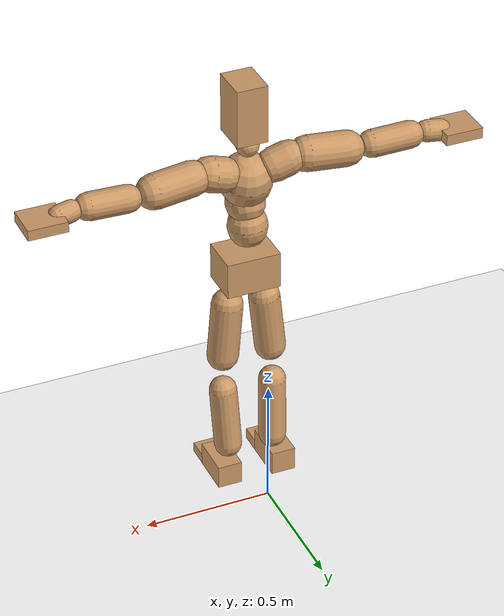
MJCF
<mujoco model="humanoid">
  <option integrator="implicitfast" />

  <visual>
    <global offwidth="1280" offheight="960" />
    <headlight active="1" ambient="0.34 0.34 0.34" diffuse="0.5 0.5 0.5" />
  </visual>

  <default>
    <joint damping="2" stiffness="2" armature="0.01" limited="true" solimplimit="0 .99 .01" />
    <geom condim="1" friction="0.7 0.005 0.0001" solimp=".99 .99 .003" solref="0.015 1" margin="0.001" rgba="0.8 0.6 .4 1" />
    <default class="smplcontact">
      <geom condim="3" friction="1. 0.005 0.0001" solref="0.015 1" solimp="0.98 0.98 0.001" priority="1" />
    </default>
    <default class="stiff_medium">
      <joint stiffness="10" />
    </default>
    <default class="stiff_medium_higher">
      <joint stiffness="50" />
    </default>
    <default class="stiff_high">
      <joint stiffness="100" />
    </default>
  </default>

  <asset>
    <texture type="skybox" builtin="gradient" rgb1="0.99 0.99 0.99" rgb2="0.608 0.828 0.892" width="100" />
    <texture builtin="flat" height="1278" mark="cross" markrgb="1 1 1" name="texgeom" random="0.01" rgb1="0.8 0.6 0.4" rgb2="0.8 0.6 0.4" type="cube" width="127" />
    <texture name="texplane" type="2d" builtin="checker" markrgb="1 1 1" rgb1="0.756 0.772 0.76" rgb2="0.6 0.6 0.6" width="100" height="100" />
    <material name="MatPlane" reflectance="0.5" texture="texplane" texrepeat="1 1" texuniform="true" />
    <material name="geom" texture="texgeom" texuniform="true" />
  </asset>

  <worldbody>
    <light name="tracking_light" pos="0 0 7" dir="0 0 -1" directional="true" cutoff="100" exponent="1" diffuse="1 1 1" specular="0.1 0.1 0.1" mode="trackcom" />
    <camera name="back" pos="0 3 2.4" xyaxes="-1 0 0 0 -1 2" mode="trackcom" />
    <camera name="side" pos="-3 0 2.4" xyaxes="0 -1 0 1 0 2" mode="trackcom" />
    <camera name="front_side" pos="-2.8 -2.8 0.8" xyaxes="0.5 -0.5 0 0.1 0.1 1" mode="trackcom" />
    <geom condim="3" name="floor" pos="0 0 0" rgba="1 1 1 1" size="100 100 .2" type="plane" material="MatPlane" />
    <body name="Pelvis" pos="-0.0018 -0.2233 0.9367" euler="90 0 0">
      <site name="Pelvis" size="0.01" />
      <freejoint name="Pelvis" />
      <geom type="box" pos="-0.0000 -0.0121 -0.0055" size="0.1069 0.0722 0.083" quat="1.0000 0.0000 0.0000 0.0000" density="3165.830099" name="Pelvis" />
      <body name="L_Hip" pos="0.0695 -0.0914 -0.0068">
        <joint name="L_Hip_x" type="hinge" pos="0 0 0" axis="1 0 0" stiffness="10.0" range="-160.0 22.92" class="stiff_medium" damping="15.0" armature="0.01"/>
        <joint name="L_Hip_y" type="hinge" pos="0 0 0" axis="0 1 0" stiffness="10.0" range="-70.0 70.0" class="stiff_medium" damping="10.000000000000004" armature="0.01000000000000001"/>
        <joint name="L_Hip_z" type="hinge" pos="0 0 0" axis="0 0 1" stiffness="10.0" range="-28.65 90.0" class="stiff_medium" damping="9.999999999999998" armature="0.009999999999999998"/>
        <geom type="capsule" density="2040.816327" fromto="0.0069 -0.075 -0.0009 0.0274 -0.3002 -0.0036" size="0.0615" name="L_Hip" />
        <body name="L_Knee" pos="0.0343 -0.3752 -0.0045">
          <joint name="L_Knee_x" type="hinge" pos="0 0 0" axis="1 0 0" range="-5.16 171.89" damping="8.000000000000002" armature="0.010000000000000005" stiffness="2.0"/>
          <joint name="L_Knee_y" type="hinge" pos="0 0 0" axis="0 1 0" range="-4.58 6.88" damping="8.000000000000002" armature="0.010000000000000005" stiffness="2.0"/>
          <joint name="L_Knee_z" type="hinge" pos="0 0 0" axis="0 0 1" range="-6.88 4.58" damping="7.999999999999999" armature="0.009999999999999998" stiffness="2.0"/>
          <geom type="capsule" density="1234.567901" fromto="-0.0027 -0.0796 -0.0087 -0.0109 -0.3184 -0.035" size="0.0541" name="L_Knee" />
          <body name="L_Ankle" pos="-0.0136 -0.398 -0.0437">
            <joint name="L_Ankle_x" type="hinge" pos="0 0 0" axis="1 0 0" range="-45.84 45.84" class="stiff_medium" damping="6.000000000000034" armature="0.010000000000000111" stiffness="10.0"/>
            <joint name="L_Ankle_y" type="hinge" pos="0 0 0" axis="0 1 0" range="-74.48 22.92" class="stiff_medium" damping="3.000000000000001" armature="0.010000000000000005" stiffness="10.0"/>
            <joint name="L_Ankle_z" type="hinge" pos="0 0 0" axis="0 0 1" range="-4.58 4.58" class="stiff_medium" damping="6.000000000000012" armature="0.01000000000000004" stiffness="10.0"/>
            <geom type="box" pos="0.0233 -0.0239 0.0242" size="0.0483 0.0464 0.085" quat="1.0000 0.0000 0.0000 0.0000" density="449.071558" name="L_Ankle" class="smplcontact" />
            <body name="L_Toe" pos="0.0264 -0.0558 0.1193">
              <joint name="L_Toe_x" type="hinge" pos="0 0 0" axis="1 0 0" range="-91.67 22.92" armature="0.009999999999999626" damping="1.9999999999999625" stiffness="2.0"/>
              <joint name="L_Toe_y" type="hinge" pos="0 0 0" axis="0 1 0" range="-4.58 4.58" armature="0.01" damping="2.0" stiffness="2.0"/>
              <joint name="L_Toe_z" type="hinge" pos="0 0 0" axis="0 0 1" range="-4.58 4.58" armature="0.010000000000000063" damping="2.000000000000006" stiffness="2.0"/>
              <geom type="box" pos="-0.003 0.0055 0.0248" size="0.0478 0.02 0.0496" quat="1.0000 0.0000 0.0000 0.0000" density="423.206892" name="L_Toe" class="smplcontact" />
            </body>
          </body>
        </body>
      </body>
      <body name="R_Hip" pos="-0.0677 -0.0905 -0.0043">
        <joint name="R_Hip_x" type="hinge" pos="0 0 0" axis="1 0 0" stiffness="10.0" range="-160.0 22.92" class="stiff_medium" damping="15.0" armature="0.01"/>
        <joint name="R_Hip_y" type="hinge" pos="0 0 0" axis="0 1 0" stiffness="10.0" range="-70.0 70.0" class="stiff_medium" damping="10.000000000000004" armature="0.01000000000000001"/>
        <joint name="R_Hip_z" type="hinge" pos="0 0 0" axis="0 0 1" stiffness="10.0" range="-90.0 28.65" class="stiff_medium" damping="9.999999999999998" armature="0.009999999999999998"/>
        <geom type="capsule" density="2040.816327" fromto="-0.0077 -0.0765 -0.0018 -0.0306 -0.3061 -0.0071" size="0.0606" name="R_Hip" />
        <body name="R_Knee" pos="-0.0383 -0.3826 -0.0089">
          <joint name="R_Knee_x" type="hinge" pos="0 0 0" axis="1 0 0" range="-5.16 171.89" damping="8.000000000000002" armature="0.010000000000000005" stiffness="2.0"/>
          <joint name="R_Knee_y" type="hinge" pos="0 0 0" axis="0 1 0" range="-6.88 4.58" damping="8.000000000000002" armature="0.010000000000000005" stiffness="2.0"/>
          <joint name="R_Knee_z" type="hinge" pos="0 0 0" axis="0 0 1" range="-4.58 6.88" damping="7.999999999999999" armature="0.009999999999999998" stiffness="2.0"/>
          <geom type="capsule" density="1234.567901" fromto="0.0032 -0.0797 -0.0085 0.0126 -0.3187 -0.0338" size="0.0541" name="R_Knee" />
          <body name="R_Ankle" pos="0.0158 -0.3984 -0.0423">
            <joint name="R_Ankle_x" type="hinge" pos="0 0 0" axis="1 0 0" range="-45.84 45.84" class="stiff_medium" damping="6.000000000000034" armature="0.010000000000000111" stiffness="10.0"/>
            <joint name="R_Ankle_y" type="hinge" pos="0 0 0" axis="0 1 0" range="-22.92 74.48" class="stiff_medium" damping="3.000000000000001" armature="0.010000000000000005" stiffness="10.0"/>
            <joint name="R_Ankle_z" type="hinge" pos="0 0 0" axis="0 0 1" range="-4.58 4.58" class="stiff_medium" damping="6.000000000000012" armature="0.01000000000000004" stiffness="10.0"/>
            <geom type="box" pos="-0.0212 -0.0174 0.0256" size="0.0483 0.0478 0.0865" quat="1.0000 0.0000 0.0000 0.0000" density="434.700981" name="R_Ankle" class="smplcontact" />
            <body name="R_Toe" pos="-0.0254 -0.0481 0.1233">
              <joint name="R_Toe_x" type="hinge" pos="0 0 0" axis="1 0 0" range="-91.67 22.92" armature="0.009999999999999626" damping="1.9999999999999625" stiffness="2.0"/>
              <joint name="R_Toe_y" type="hinge" pos="0 0 0" axis="0 1 0" range="-4.58 4.58" armature="0.01" damping="2.0" stiffness="2.0"/>
              <joint name="R_Toe_z" type="hinge" pos="0 0 0" axis="0 0 1" range="-4.58 4.58" armature="0.010000000000000063" damping="2.000000000000006" stiffness="2.0"/>
              <geom type="box" pos="0.0042 0.0045 0.0227" size="0.0479 0.0216 0.0493" quat="1.0000 0.0000 0.0000 0.0000" density="407.384095" name="R_Toe" class="smplcontact" />
            </body>
          </body>
        </body>
      </body>
      <body name="Torso" pos="-0.0025 0.109 -0.0267">
        <joint name="Torso_x" type="hinge" pos="0 0 0" axis="1 0 0" range="-25.78 57.3" class="stiff_medium" damping="19.29104056480637" armature="0.012716122077821353" stiffness="13.006909000000002"/>
        <joint name="Torso_y" type="hinge" pos="0 0 0" axis="0 1 0" range="-57.3 57.3" class="stiff_high" damping="31.14949540784618" armature="0.01871234513321605" stiffness="129.6324775510204"/>
        <joint name="Torso_z" type="hinge" pos="0 0 0" axis="0 0 1" range="-34.38 34.38" class="stiff_high" damping="27.178654722712015" armature="0.014767894642527422" stiffness="125.04816875"/>
        <geom type="capsule" density="2040.816327" fromto="0.0025 0.0608 0.0005 0.003 0.0743 0.0006" size="0.0769" name="Torso" />
        <body name="Spine" pos="0.0055 0.1352 0.0011">
          <joint name="Spine_x" type="hinge" pos="0 0 0" axis="1 0 0" stiffness="13.077583137254901" range="-25.78 57.3" class="stiff_medium" damping="19.075321760330112" armature="0.012366127982897561"/>
          <joint name="Spine_y" type="hinge" pos="0 0 0" axis="0 1 0" stiffness="13.903593720930234" range="-57.3 57.3" class="stiff_high" damping="12.924818807903284" armature="0.01877335463699832"/>
          <joint name="Spine_z" type="hinge" pos="0 0 0" axis="0 0 1" stiffness="26.660113191489362" range="-34.38 34.38" class="stiff_high" damping="17.472546765602015" armature="0.015904423725694707"/>
          <geom type="capsule" density="2040.816327" fromto="0.0007 0.0238 0.0114 0.0008 0.0291 0.014" size="0.0755" name="Spine" />
          <body name="Chest" pos="0.0015 0.0529 0.0254">
            <joint name="Chest_x" type="hinge" pos="0 0 0" axis="1 0 0" stiffness="13.158739166666667" range="-25.78 57.3" class="stiff_medium" damping="18.999721554217736" armature="0.012192637896907794"/>
            <joint name="Chest_y" type="hinge" pos="0 0 0" axis="0 1 0" stiffness="15.587578717948716" range="-57.3 57.3" class="stiff_high" damping="13.701249400321483" armature="0.018817490689081683"/>
            <joint name="Chest_z" type="hinge" pos="0 0 0" axis="0 0 1" stiffness="26.304223414634148" range="-34.38 34.38" class="stiff_high" damping="17.648077458657234" armature="0.01644511146647537"/>
            <geom type="capsule" density="2040.816327" fromto="-0.0009 0.0682 -0.0173 -0.001 0.0833 -0.0212" size="0.1002" name="Chest" />
            <body name="Neck" pos="-0.0028 0.2139 -0.0429">
              <joint name="Neck_x" type="hinge" pos="0 0 0" axis="1 0 0" range="-28.65 57.3" class="stiff_medium_higher" damping="10.000000000000009" armature="0.010000000000000021" stiffness="50.0"/>
              <joint name="Neck_y" type="hinge" pos="0 0 0" axis="0 1 0" range="-40.11 40.11" class="stiff_medium_higher" damping="10.0" armature="0.01" stiffness="50.0"/>
              <joint name="Neck_z" type="hinge" pos="0 0 0" axis="0 0 1" range="-40.11 40.11" class="stiff_medium_higher" damping="10.000000000000004" armature="0.01000000000000001" stiffness="50.0"/>
              <geom type="capsule" density="1000" fromto="0.001 0.013 0.0103 0.0041 0.052 0.0411" size="0.0436" name="Neck" />
              <body name="Head" pos="0.0052 0.065 0.0513">
                <joint name="Head_x" type="hinge" pos="0 0 0" axis="1 0 0" range="-28.65 57.3" class="stiff_medium_higher" damping="2.000000000000005" armature="0.010000000000000049" stiffness="50.0"/>
                <joint name="Head_y" type="hinge" pos="0 0 0" axis="0 1 0" range="-40.11 40.11" class="stiff_medium_higher" damping="2.0" armature="0.010000000000000002" stiffness="50.0"/>
                <joint name="Head_z" type="hinge" pos="0 0 0" axis="0 0 1" range="-40.11 40.11" class="stiff_medium_higher" damping="2.0000000000000036" armature="0.010000000000000038" stiffness="50.0"/>
                <geom type="box" pos="-0.0042 0.0876 -0.0116" size="0.0606 0.1154 0.076" quat="1.0000 0.0000 0.0000 0.0000" density="1018.069894" name="Head" />
                <geom type="capsule" name="nose" size="0.02 0.01" pos="0 0.07 0.05" quat="1 0 0 0" mass="0" contype="0" conaffinity="0" />
              </body>
            </body>
            <body name="L_Thorax" pos="0.0788 0.1217 -0.0341">
              <joint name="L_Thorax_x" type="hinge" pos="0 0 0" axis="1 0 0" range="-10.89 4.58" class="stiff_medium_higher" damping="43.249120126759436" armature="0.024780247368308028" stiffness="94.35369852941177"/>
              <joint name="L_Thorax_y" type="hinge" pos="0 0 0" axis="0 1 0" range="-28.65 17.19" class="stiff_medium_higher" damping="37.992704916292276" armature="0.01924426781745792" stiffness="93.75815441176472"/>
              <joint name="L_Thorax_z" type="hinge" pos="0 0 0" axis="0 0 1" range="-31.51 40.11" class="stiff_medium_higher" damping="37.988831321789895" armature="0.019239237295092266" stiffness="93.76354705882352"/>
              <geom type="capsule" density="1000" fromto="0.0182 0.0061 -0.0018 0.0728 0.0244 -0.0071" size="0.06773" name="L_Thorax" />
              <body name="L_Shoulder" pos="0.091 0.0305 -0.0089">
                <joint name="L_Shoulder_x" type="hinge" pos="0 0 0" axis="1 0 0" range="-97.4 97.4" class="stiff_medium" damping="13.540713032767545" armature="0.02685634459641916" stiffness="18.96416245098039"/>
                <joint name="L_Shoulder_y" type="hinge" pos="0 0 0" axis="0 1 0" range="-108.86 80.21" class="stiff_medium" damping="11.45874564857997" armature="0.019404937561320303" stiffness="18.795739117647056"/>
                <joint name="L_Shoulder_z" type="hinge" pos="0 0 0" axis="0 0 1" range="-97.4 85.94" class="stiff_medium" damping="11.460641408532354" armature="0.019398062491464307" stiffness="18.808622647058826"/>
                <geom type="capsule" density="1000" fromto="0.0519 -0.0026 -0.0055 0.2077 -0.0102 -0.022" size="0.06721" name="L_Shoulder" />
                <body name="L_Elbow" pos="0.2596 -0.0128 -0.0275">
                  <joint name="L_Elbow_x" type="hinge" pos="0 0 0" axis="1 0 0" range="-17.19 4.58" damping="12.11396856528693" armature="0.03036546563002947" stiffness="3.86618762745098"/>
                  <joint name="L_Elbow_y" type="hinge" pos="0 0 0" axis="0 1 0" range="-180.0 17.19" damping="9.87923202940576" armature="0.020196336537751724" stiffness="3.8660170000000003"/>
                  <joint name="L_Elbow_z" type="hinge" pos="0 0 0" axis="0 0 1" range="-100.84 4.58" damping="9.874314350416066" armature="0.02016024100969883" stiffness="3.86908405882353"/>
                  <geom type="capsule" density="1000" fromto="0.0498 0.0018 -0.0002 0.1994 0.0072 -0.0009" size="0.05265" name="L_Elbow" />
                  <body name="L_Wrist" pos="0.2492 0.009 -0.0012">
                    <joint name="L_Wrist_x" type="hinge" pos="0 0 0" axis="1 0 0" range="-180.0 22.92" armature="0.031821755016621926" damping="5.176113713635182" stiffness="4.2097227450980395"/>
                    <joint name="L_Wrist_y" type="hinge" pos="0 0 0" axis="0 1 0" range="-17.19 17.19" armature="0.023223590547224927" damping="4.408607233335378" stiffness="4.184498882352941"/>
                    <joint name="L_Wrist_z" type="hinge" pos="0 0 0" axis="0 0 1" range="-22.92 22.92" armature="0.022733175637766438" damping="4.366297185867288" stiffness="4.1931121764705885"/>
                    <geom type="capsule" density="1000" fromto="0.0168 -0.0016 -0.003 0.0672 -0.0065 -0.012" size="0.04134" name="L_Wrist" class="smplcontact" />
                    <body name="L_Hand" pos="0.084 -0.0082 -0.0149">
                      <joint name="L_Hand_x" type="hinge" pos="0 0 0" axis="1 0 0" range="-17.19 17.19" armature="0.036468867502820156" damping="5.661169557739669" stiffness="4.394"/>
                      <joint name="L_Hand_y" type="hinge" pos="0 0 0" axis="0 1 0" range="-51.57 51.57" armature="0.02914228011113842" damping="5.060655665194822" stiffness="4.394"/>
                      <joint name="L_Hand_z" type="hinge" pos="0 0 0" axis="0 0 1" range="-91.67 91.67" armature="0.027189278138126233" damping="4.888142553954961" stiffness="4.394"/>
                      <geom type="box" pos="0.0493 0.001 -0.0058" size="0.07605 0.02054 0.06994" quat="1.0000 0.0000 0.0000 0.0000" density="400.552564" name="L_Hand" class="smplcontact" />
                    </body>
                  </body>
                </body>
              </body>
            </body>
            <body name="R_Thorax" pos="-0.0818 0.1188 -0.0386">
              <joint name="R_Thorax_x" type="hinge" pos="0 0 0" axis="1 0 0" range="-10.89 4.58" class="stiff_medium_higher" damping="43.249120126759436" armature="0.024780247368308028" stiffness="94.35369852941177"/>
              <joint name="R_Thorax_y" type="hinge" pos="0 0 0" axis="0 1 0" range="-17.19 28.65" class="stiff_medium_higher" damping="37.992704916292276" armature="0.01924426781745792" stiffness="93.75815441176472"/>
              <joint name="R_Thorax_z" type="hinge" pos="0 0 0" axis="0 0 1" range="-40.11 31.51" class="stiff_medium_higher" damping="37.988831321789895" armature="0.019239237295092266" stiffness="93.76354705882352"/>
              <geom type="capsule" density="1000" fromto="-0.0192 0.0065 -0.0018 -0.0768 0.026 -0.0073" size="0.06643" name="R_Thorax" />
              <body name="R_Shoulder" pos="-0.096 0.0326 -0.0091">
                <joint name="R_Shoulder_x" type="hinge" pos="0 0 0" axis="1 0 0" range="-97.4 97.4" class="stiff_medium" damping="13.540713032767545" armature="0.02685634459641916" stiffness="18.96416245098039"/>
                <joint name="R_Shoulder_y" type="hinge" pos="0 0 0" axis="0 1 0" range="-80.21 108.86" class="stiff_medium" damping="11.45874564857997" armature="0.019404937561320303" stiffness="18.795739117647056"/>
                <joint name="R_Shoulder_z" type="hinge" pos="0 0 0" axis="0 0 1" range="-85.94 97.4" class="stiff_medium" damping="11.460641408532354" armature="0.019398062491464307" stiffness="18.808622647058826"/>
                <geom type="capsule" density="1000" fromto="-0.0507 -0.0027 -0.0043 -0.203 -0.0107 -0.0171" size="0.06903" name="R_Shoulder" />
                <body name="R_Elbow" pos="-0.2537 -0.0133 -0.0214">
                  <joint name="R_Elbow_x" type="hinge" pos="0 0 0" axis="1 0 0" range="-17.19 4.58" damping="12.11396856528693" armature="0.03036546563002947" stiffness="3.86618762745098"/>
                  <joint name="R_Elbow_y" type="hinge" pos="0 0 0" axis="0 1 0" range="-17.19 180.0" damping="9.87923202940576" armature="0.020196336537751724" stiffness="3.8660170000000003"/>
                  <joint name="R_Elbow_z" type="hinge" pos="0 0 0" axis="0 0 1" range="-4.58 100.84" damping="9.874314350416066" armature="0.02016024100969883" stiffness="3.86908405882353"/>
                  <geom type="capsule" density="1000" fromto="-0.0511 0.0016 -0.0011 -0.2042 0.0062 -0.0044" size="0.05304" name="R_Elbow" />
                  <body name="R_Wrist" pos="-0.2553 0.0078 -0.0056">
                    <joint name="R_Wrist_x" type="hinge" pos="0 0 0" axis="1 0 0" range="-180.0 22.92" armature="0.031821755016621926" damping="5.176113713635182" stiffness="4.2097227450980395"/>
                    <joint name="R_Wrist_y" type="hinge" pos="0 0 0" axis="0 1 0" range="-17.19 17.19" armature="0.023223590547224927" damping="4.408607233335378" stiffness="4.184498882352941"/>
                    <joint name="R_Wrist_z" type="hinge" pos="0 0 0" axis="0 0 1" range="-22.92 22.92" armature="0.022733175637766438" damping="4.366297185867288" stiffness="4.1931121764705885"/>
                    <geom type="capsule" density="1000" fromto="-0.0169 -0.0012 -0.0021 -0.0677 -0.0049 -0.0083" size="0.04238" name="R_Wrist" class="smplcontact" />
                    <body name="R_Hand" pos="-0.0846 -0.0061 -0.0103">
                      <joint name="R_Hand_x" type="hinge" pos="0 0 0" axis="1 0 0" range="-17.19 17.19" armature="0.036468867502820156" damping="5.661169557739669" stiffness="4.394"/>
                      <joint name="R_Hand_y" type="hinge" pos="0 0 0" axis="0 1 0" range="-51.57 51.57" armature="0.02914228011113842" damping="5.060655665194822" stiffness="4.394"/>
                      <joint name="R_Hand_z" type="hinge" pos="0 0 0" axis="0 0 1" range="-91.67 91.67" armature="0.027189278138126233" damping="4.888142553954961" stiffness="4.394"/>
                      <geom type="box" pos="-0.0462 -0.0009 -0.0079" size="0.07397 0.02132 0.07098" quat="1.0000 0.0000 0.0000 0.0000" density="403.679611" name="R_Hand" class="smplcontact" />
                    </body>
                  </body>
                </body>
              </body>
            </body>
          </body>
        </body>
      </body>
    </body>
  </worldbody>
  <actuator>
    <general name="L_Hip_x" joint="L_Hip_x" biastype="affine" gainprm="287.33006409732246" biasprm="-215.3247604770444 -180.0 -2.0" ctrllimited="true" ctrlrange="-1 1" forcerange="-360.0 360.0" />
    <general name="L_Hip_y" joint="L_Hip_y" biastype="affine" gainprm="219.9114857512855" biasprm="0.0 -180.0 -2.000000000000001" ctrllimited="true" ctrlrange="-1 1" forcerange="-360.0 360.0" />
    <general name="L_Hip_z" joint="L_Hip_z" biastype="affine" gainprm="186.3749841742145" biasprm="96.3683546488669 -180.0 -1.9999999999999998" ctrllimited="true" ctrlrange="-1 1" forcerange="-360.0 360.0" />
    <general name="L_Knee_x" joint="L_Knee_x" biastype="affine" gainprm="278.10948965903646" biasprm="261.8988715665131 -180.0 -2.0000000000000004" ctrllimited="true" ctrlrange="-1 1" forcerange="-360.0 360.0" />
    <general name="L_Knee_y" joint="L_Knee_y" biastype="affine" gainprm="18.001325905069514" biasprm="3.612831551628262 -180.0 -2.0000000000000004" ctrllimited="true" ctrlrange="-1 1" forcerange="-360.0 360.0" />
    <general name="L_Knee_z" joint="L_Knee_z" biastype="affine" gainprm="18.001325905069514" biasprm="-3.612831551628262 -180.0 -1.9999999999999998" ctrllimited="true" ctrlrange="-1 1" forcerange="-360.0 360.0" />
    <general name="L_Ankle_x" joint="L_Ankle_x" biastype="affine" gainprm="72.00530362027807" biasprm="0.0 -90.0 -2.000000000000011" ctrllimited="true" ctrlrange="-1 1" forcerange="-180.0 180.0" />
    <general name="L_Ankle_y" joint="L_Ankle_y" biastype="affine" gainprm="76.49778111491148" biasprm="-40.49512930477244 -90.0 -2.0000000000000004" ctrllimited="true" ctrlrange="-1 1" forcerange="-180.0 180.0" />
    <general name="L_Ankle_z" joint="L_Ankle_z" biastype="affine" gainprm="7.1942471767206255" biasprm="0.0 -90.0 -2.000000000000004" ctrllimited="true" ctrlrange="-1 1" forcerange="-180.0 180.0" />
    <general name="L_Toe_x" joint="L_Toe_x" biastype="affine" gainprm="71.99902043497087" biasprm="-43.19689898685965 -72.0 -0.7999999999999851" ctrllimited="true" ctrlrange="-1 1" forcerange="-144.0 144.0" />
    <general name="L_Toe_y" joint="L_Toe_y" biastype="affine" gainprm="5.755397741376501" biasprm="0.0 -72.0 -0.8" ctrllimited="true" ctrlrange="-1 1" forcerange="-144.0 144.0" />
    <general name="L_Toe_z" joint="L_Toe_z" biastype="affine" gainprm="5.755397741376501" biasprm="0.0 -72.0 -0.8000000000000025" ctrllimited="true" ctrlrange="-1 1" forcerange="-144.0 144.0" />
    <general name="R_Hip_x" joint="R_Hip_x" biastype="affine" gainprm="287.33006409732246" biasprm="-215.3247604770444 -180.0 -2.0" ctrllimited="true" ctrlrange="-1 1" forcerange="-360.0 360.0" />
    <general name="R_Hip_y" joint="R_Hip_y" biastype="affine" gainprm="219.9114857512855" biasprm="0.0 -180.0 -2.000000000000001" ctrllimited="true" ctrlrange="-1 1" forcerange="-360.0 360.0" />
    <general name="R_Hip_z" joint="R_Hip_z" biastype="affine" gainprm="186.3749841742145" biasprm="-96.3683546488669 -180.0 -1.9999999999999998" ctrllimited="true" ctrlrange="-1 1" forcerange="-360.0 360.0" />
    <general name="R_Knee_x" joint="R_Knee_x" biastype="affine" gainprm="278.10948965903646" biasprm="261.8988715665131 -180.0 -2.0000000000000004" ctrllimited="true" ctrlrange="-1 1" forcerange="-360.0 360.0" />
    <general name="R_Knee_y" joint="R_Knee_y" biastype="affine" gainprm="18.001325905069514" biasprm="-3.612831551628262 -180.0 -2.0000000000000004" ctrllimited="true" ctrlrange="-1 1" forcerange="-360.0 360.0" />
    <general name="R_Knee_z" joint="R_Knee_z" biastype="affine" gainprm="18.001325905069514" biasprm="3.612831551628262 -180.0 -1.9999999999999998" ctrllimited="true" ctrlrange="-1 1" forcerange="-360.0 360.0" />
    <general name="R_Ankle_x" joint="R_Ankle_x" biastype="affine" gainprm="72.00530362027807" biasprm="0.0 -90.0 -2.000000000000011" ctrllimited="true" ctrlrange="-1 1" forcerange="-180.0 180.0" />
    <general name="R_Ankle_y" joint="R_Ankle_y" biastype="affine" gainprm="76.49778111491148" biasprm="40.49512930477244 -90.0 -2.0000000000000004" ctrllimited="true" ctrlrange="-1 1" forcerange="-180.0 180.0" />
    <general name="R_Ankle_z" joint="R_Ankle_z" biastype="affine" gainprm="7.1942471767206255" biasprm="0.0 -90.0 -2.000000000000004" ctrllimited="true" ctrlrange="-1 1" forcerange="-180.0 180.0" />
    <general name="R_Toe_x" joint="R_Toe_x" biastype="affine" gainprm="71.99902043497087" biasprm="-43.19689898685965 -72.0 -0.7999999999999851" ctrllimited="true" ctrlrange="-1 1" forcerange="-144.0 144.0" />
    <general name="R_Toe_y" joint="R_Toe_y" biastype="affine" gainprm="5.755397741376501" biasprm="0.0 -72.0 -0.8" ctrllimited="true" ctrlrange="-1 1" forcerange="-144.0 144.0" />
    <general name="R_Toe_z" joint="R_Toe_z" biastype="affine" gainprm="5.755397741376501" biasprm="0.0 -72.0 -0.8000000000000025" ctrllimited="true" ctrlrange="-1 1" forcerange="-144.0 144.0" />
    <general name="Torso_x" joint="Torso_x" biastype="affine" gainprm="226.32326685910903" biasprm="85.86554370966677 -312.16581600000006 -5.144277483948366" ctrllimited="true" ctrlrange="-1 1" forcerange="-468.2487240000001 468.2487240000001" />
    <general name="Torso_y" joint="Torso_y" biastype="affine" gainprm="311.1408635036701" biasprm="0.0 -311.117946122449 -6.229899081569236" ctrllimited="true" ctrlrange="-1 1" forcerange="-466.6769191836735 466.6769191836735" />
    <general name="Torso_z" joint="Torso_z" biastype="affine" gainprm="180.08262716007036" biasprm="0.0 -300.115605 -5.435730944542403" ctrllimited="true" ctrlrange="-1 1" forcerange="-450.1734075 450.1734075" />
    <general name="Spine_x" joint="Spine_x" biastype="affine" gainprm="227.55301342118446" biasprm="86.3321013846381 -313.86199529411766 -5.086752469421364" ctrllimited="true" ctrlrange="-1 1" forcerange="-470.79299294117646 470.79299294117646" />
    <general name="Spine_y" joint="Spine_y" biastype="affine" gainprm="333.710829096191" biasprm="0.0 -333.6862493023256 -6.462409403951642" ctrllimited="true" ctrlrange="-1 1" forcerange="-500.5293739534884 500.5293739534884" />
    <general name="Spine_z" joint="Spine_z" biastype="affine" gainprm="191.9669544904172" biasprm="0.0 -319.92135829787236 -5.824182255200672" ctrllimited="true" ctrlrange="-1 1" forcerange="-479.8820374468085 479.8820374468085" />
    <general name="Chest_x" joint="Chest_x" biastype="affine" gainprm="228.96514736490502" biasprm="86.86785562038763 -315.80974 -5.0665924144580625" ctrllimited="true" ctrlrange="-1 1" forcerange="-473.71461 473.71461" />
    <general name="Chest_y" joint="Chest_y" biastype="affine" gainprm="374.12944609696063" biasprm="0.0 -374.1018892307692 -6.850624700160742" ctrllimited="true" ctrlrange="-1 1" forcerange="-561.1528338461537 561.1528338461537" />
    <general name="Chest_z" joint="Chest_z" biastype="affine" gainprm="189.40435934663594" biasprm="0.0 -315.65068097560976 -5.882692486219078" ctrllimited="true" ctrlrange="-1 1" forcerange="-473.47602146341467 473.47602146341467" />
    <general name="Neck_x" joint="Neck_x" biastype="affine" gainprm="27.00198885760427" biasprm="9.000662952534757 -36.0 -0.8000000000000007" ctrllimited="true" ctrlrange="-1 1" forcerange="-72.0 72.0" />
    <general name="Neck_y" joint="Neck_y" biastype="affine" gainprm="25.20185626709732" biasprm="0.0 -36.0 -0.8" ctrllimited="true" ctrlrange="-1 1" forcerange="-72.0 72.0" />
    <general name="Neck_z" joint="Neck_z" biastype="affine" gainprm="25.20185626709732" biasprm="0.0 -36.0 -0.8000000000000004" ctrllimited="true" ctrlrange="-1 1" forcerange="-72.0 72.0" />
    <general name="Head_x" joint="Head_x" biastype="affine" gainprm="18.001325905069514" biasprm="6.000441968356505 -24.0 -0.800000000000002" ctrllimited="true" ctrlrange="-1 1" forcerange="-48.0 48.0" />
    <general name="Head_y" joint="Head_y" biastype="affine" gainprm="16.801237511398213" biasprm="0.0 -24.0 -0.8" ctrllimited="true" ctrlrange="-1 1" forcerange="-48.0 48.0" />
    <general name="Head_z" joint="Head_z" biastype="affine" gainprm="16.801237511398213" biasprm="0.0 -24.0 -0.8000000000000015" ctrllimited="true" ctrlrange="-1 1" forcerange="-48.0 48.0" />
    <general name="L_Thorax_x" joint="L_Thorax_x" biastype="affine" gainprm="30.57087405713822" biasprm="-12.469438610248368 -226.44887647058823 -3.4599296101407546" ctrllimited="true" ctrlrange="-1 1" forcerange="-452.89775294117646 452.89775294117646" />
    <general name="L_Thorax_y" joint="L_Thorax_y" biastype="affine" gainprm="90.01445833728042" biasprm="-22.503614584320104 -225.01957058823533 -3.039416393303382" ctrllimited="true" ctrlrange="-1 1" forcerange="-450.03914117647065 450.03914117647065" />
    <general name="L_Thorax_z" joint="L_Thorax_z" biastype="affine" gainprm="140.64586182274655" biasprm="16.888500581899194 -225.03251294117646 -3.0391065057431916" ctrllimited="true" ctrlrange="-1 1" forcerange="-450.0650258823529 450.0650258823529" />
    <general name="L_Shoulder_x" joint="L_Shoulder_x" biastype="affine" gainprm="154.7430771416236" biasprm="0.0 -91.02797976470588 -3.610856808738012" ctrllimited="true" ctrlrange="-1 1" forcerange="-182.05595952941175 182.05595952941175" />
    <general name="L_Shoulder_y" joint="L_Shoulder_y" biastype="affine" gainprm="148.85747293112695" biasprm="-22.55654836556189 -90.21954776470588 -3.0556655062879923" ctrllimited="true" ctrlrange="-1 1" forcerange="-180.43909552941176 180.43909552941176" />
    <general name="L_Shoulder_z" joint="L_Shoulder_z" biastype="affine" gainprm="144.44510525908035" biasprm="-9.02880389587141 -90.28138870588236 -3.056171042275295" ctrllimited="true" ctrlrange="-1 1" forcerange="-180.56277741176473 180.56277741176473" />
    <general name="L_Elbow_x" joint="L_Elbow_x" biastype="affine" gainprm="26.44181293226006" biasprm="-15.31608916287549 -139.1827545882353 -1.938234970445909" ctrllimited="true" ctrlrange="-1 1" forcerange="-278.3655091764706 278.3655091764706" />
    <general name="L_Elbow_y" joint="L_Elbow_y" biastype="affine" gainprm="239.49614049682026" biasprm="-197.7400813138968 -139.176612 -1.5806771247049216" ctrllimited="true" ctrlrange="-1 1" forcerange="-278.353224 278.353224" />
    <general name="L_Elbow_z" joint="L_Elbow_z" biastype="affine" gainprm="128.138917195198" biasprm="-117.00485836852361 -139.2870261176471 -1.5798902960665706" ctrllimited="true" ctrlrange="-1 1" forcerange="-278.5740522352942 278.5740522352942" />
    <general name="L_Wrist_x" joint="L_Wrist_x" biastype="affine" gainprm="44.72774155591582" biasprm="-34.62366274198333 -25.258336470588237 -2.070445485454073" ctrllimited="true" ctrlrange="-1 1" forcerange="-50.51667294117647 50.51667294117647" />
    <general name="L_Wrist_y" joint="L_Wrist_y" biastype="affine" gainprm="7.532652813063446" biasprm="0.0 -25.10699329411765 -1.763442893334151" ctrllimited="true" ctrlrange="-1 1" forcerange="-50.2139865882353 50.2139865882353" />
    <general name="L_Wrist_z" joint="L_Wrist_z" biastype="affine" gainprm="10.064210512688325" biasprm="0.0 -25.15867305882353 -1.7465188743469153" ctrllimited="true" ctrlrange="-1 1" forcerange="-50.31734611764706 50.31734611764706" />
    <general name="L_Hand_x" joint="L_Hand_x" biastype="affine" gainprm="7.909782602687547" biasprm="0.0 -26.364 -2.2644678230958677" ctrllimited="true" ctrlrange="-1 1" forcerange="-52.728 52.728" />
    <general name="L_Hand_y" joint="L_Hand_y" biastype="affine" gainprm="23.729347808062634" biasprm="0.0 -26.364 -2.024262266077929" ctrllimited="true" ctrlrange="-1 1" forcerange="-52.728 52.728" />
    <general name="L_Hand_z" joint="L_Hand_z" biastype="affine" gainprm="42.18090582829361" biasprm="0.0 -26.364 -1.9552570215819847" ctrllimited="true" ctrlrange="-1 1" forcerange="-52.728 52.728" />
    <general name="R_Thorax_x" joint="R_Thorax_x" biastype="affine" gainprm="30.57087405713822" biasprm="-12.469438610248368 -226.44887647058823 -3.4599296101407546" ctrllimited="true" ctrlrange="-1 1" forcerange="-452.89775294117646 452.89775294117646" />
    <general name="R_Thorax_y" joint="R_Thorax_y" biastype="affine" gainprm="90.01445833728042" biasprm="22.50361458432009 -225.01957058823533 -3.039416393303382" ctrllimited="true" ctrlrange="-1 1" forcerange="-450.03914117647065 450.03914117647065" />
    <general name="R_Thorax_z" joint="R_Thorax_z" biastype="affine" gainprm="140.64586182274655" biasprm="-16.888500581899194 -225.03251294117646 -3.0391065057431916" ctrllimited="true" ctrlrange="-1 1" forcerange="-450.0650258823529 450.0650258823529" />
    <general name="R_Shoulder_x" joint="R_Shoulder_x" biastype="affine" gainprm="154.7430771416236" biasprm="0.0 -91.02797976470588 -3.610856808738012" ctrllimited="true" ctrlrange="-1 1" forcerange="-182.05595952941175 182.05595952941175" />
    <general name="R_Shoulder_y" joint="R_Shoulder_y" biastype="affine" gainprm="148.85747293112695" biasprm="22.55654836556189 -90.21954776470588 -3.0556655062879923" ctrllimited="true" ctrlrange="-1 1" forcerange="-180.43909552941176 180.43909552941176" />
    <general name="R_Shoulder_z" joint="R_Shoulder_z" biastype="affine" gainprm="144.44510525908035" biasprm="9.028803895871391 -90.28138870588236 -3.056171042275295" ctrllimited="true" ctrlrange="-1 1" forcerange="-180.56277741176473 180.56277741176473" />
    <general name="R_Elbow_x" joint="R_Elbow_x" biastype="affine" gainprm="26.44181293226006" biasprm="-15.31608916287549 -139.1827545882353 -1.938234970445909" ctrllimited="true" ctrlrange="-1 1" forcerange="-278.3655091764706 278.3655091764706" />
    <general name="R_Elbow_y" joint="R_Elbow_y" biastype="affine" gainprm="239.49614049682026" biasprm="197.7400813138968 -139.176612 -1.5806771247049216" ctrllimited="true" ctrlrange="-1 1" forcerange="-278.353224 278.353224" />
    <general name="R_Elbow_z" joint="R_Elbow_z" biastype="affine" gainprm="128.138917195198" biasprm="117.0048583685236 -139.2870261176471 -1.5798902960665706" ctrllimited="true" ctrlrange="-1 1" forcerange="-278.5740522352942 278.5740522352942" />
    <general name="R_Wrist_x" joint="R_Wrist_x" biastype="affine" gainprm="44.72774155591582" biasprm="-34.62366274198333 -25.258336470588237 -2.070445485454073" ctrllimited="true" ctrlrange="-1 1" forcerange="-50.51667294117647 50.51667294117647" />
    <general name="R_Wrist_y" joint="R_Wrist_y" biastype="affine" gainprm="7.532652813063446" biasprm="0.0 -25.10699329411765 -1.763442893334151" ctrllimited="true" ctrlrange="-1 1" forcerange="-50.2139865882353 50.2139865882353" />
    <general name="R_Wrist_z" joint="R_Wrist_z" biastype="affine" gainprm="10.064210512688325" biasprm="0.0 -25.15867305882353 -1.7465188743469153" ctrllimited="true" ctrlrange="-1 1" forcerange="-50.31734611764706 50.31734611764706" />
    <general name="R_Hand_x" joint="R_Hand_x" biastype="affine" gainprm="7.909782602687547" biasprm="0.0 -26.364 -2.2644678230958677" ctrllimited="true" ctrlrange="-1 1" forcerange="-52.728 52.728" />
    <general name="R_Hand_y" joint="R_Hand_y" biastype="affine" gainprm="23.729347808062634" biasprm="0.0 -26.364 -2.024262266077929" ctrllimited="true" ctrlrange="-1 1" forcerange="-52.728 52.728" />
    <general name="R_Hand_z" joint="R_Hand_z" biastype="affine" gainprm="42.18090582829361" biasprm="0.0 -26.364 -1.9552570215819847" ctrllimited="true" ctrlrange="-1 1" forcerange="-52.728 52.728" />
  </actuator>
  <contact>
    <exclude body1="Torso" body2="Chest" />
    <exclude body1="Head" body2="Chest" />
    <exclude body1="R_Knee" body2="R_Toe" />
    <exclude body1="R_Knee" body2="L_Ankle" />
    <exclude body1="R_Knee" body2="L_Toe" />
    <exclude body1="L_Knee" body2="L_Toe" />
    <exclude body1="L_Knee" body2="R_Ankle" />
    <exclude body1="L_Knee" body2="R_Toe" />
    <exclude body1="L_Shoulder" body2="Chest" />
    <exclude body1="R_Shoulder" body2="Chest" />
  </contact>
  <sensor>
    <framelinvel name="sensor_Pelvis_framelinvel" objtype="xbody" objname="Pelvis" />
    <framelinvel name="sensor_L_Hip_framelinvel" objtype="xbody" objname="L_Hip" />
    <framelinvel name="sensor_L_Knee_framelinvel" objtype="xbody" objname="L_Knee" />
    <framelinvel name="sensor_L_Ankle_framelinvel" objtype="xbody" objname="L_Ankle" />
    <framelinvel name="sensor_L_Toe_framelinvel" objtype="xbody" objname="L_Toe" />
    <framelinvel name="sensor_R_Hip_framelinvel" objtype="xbody" objname="R_Hip" />
    <framelinvel name="sensor_R_Knee_framelinvel" objtype="xbody" objname="R_Knee" />
    <framelinvel name="sensor_R_Ankle_framelinvel" objtype="xbody" objname="R_Ankle" />
    <framelinvel name="sensor_R_Toe_framelinvel" objtype="xbody" objname="R_Toe" />
    <framelinvel name="sensor_Torso_framelinvel" objtype="xbody" objname="Torso" />
    <framelinvel name="sensor_Spine_framelinvel" objtype="xbody" objname="Spine" />
    <framelinvel name="sensor_Chest_framelinvel" objtype="xbody" objname="Chest" />
    <framelinvel name="sensor_Neck_framelinvel" objtype="xbody" objname="Neck" />
    <framelinvel name="sensor_Head_framelinvel" objtype="xbody" objname="Head" />
    <framelinvel name="sensor_L_Thorax_framelinvel" objtype="xbody" objname="L_Thorax" />
    <framelinvel name="sensor_L_Shoulder_framelinvel" objtype="xbody" objname="L_Shoulder" />
    <framelinvel name="sensor_L_Elbow_framelinvel" objtype="xbody" objname="L_Elbow" />
    <framelinvel name="sensor_L_Wrist_framelinvel" objtype="xbody" objname="L_Wrist" />
    <framelinvel name="sensor_L_Hand_framelinvel" objtype="xbody" objname="L_Hand" />
    <framelinvel name="sensor_R_Thorax_framelinvel" objtype="xbody" objname="R_Thorax" />
    <framelinvel name="sensor_R_Shoulder_framelinvel" objtype="xbody" objname="R_Shoulder" />
    <framelinvel name="sensor_R_Elbow_framelinvel" objtype="xbody" objname="R_Elbow" />
    <framelinvel name="sensor_R_Wrist_framelinvel" objtype="xbody" objname="R_Wrist" />
    <framelinvel name="sensor_R_Hand_framelinvel" objtype="xbody" objname="R_Hand" />
    <frameangvel name="sensor_Pelvis_frameangvel" objtype="xbody" objname="Pelvis" />
    <frameangvel name="sensor_L_Hip_frameangvel" objtype="xbody" objname="L_Hip" />
    <frameangvel name="sensor_L_Knee_frameangvel" objtype="xbody" objname="L_Knee" />
    <frameangvel name="sensor_L_Ankle_frameangvel" objtype="xbody" objname="L_Ankle" />
    <frameangvel name="sensor_L_Toe_frameangvel" objtype="xbody" objname="L_Toe" />
    <frameangvel name="sensor_R_Hip_frameangvel" objtype="xbody" objname="R_Hip" />
    <frameangvel name="sensor_R_Knee_frameangvel" objtype="xbody" objname="R_Knee" />
    <frameangvel name="sensor_R_Ankle_frameangvel" objtype="xbody" objname="R_Ankle" />
    <frameangvel name="sensor_R_Toe_frameangvel" objtype="xbody" objname="R_Toe" />
    <frameangvel name="sensor_Torso_frameangvel" objtype="xbody" objname="Torso" />
    <frameangvel name="sensor_Spine_frameangvel" objtype="xbody" objname="Spine" />
    <frameangvel name="sensor_Chest_frameangvel" objtype="xbody" objname="Chest" />
    <frameangvel name="sensor_Neck_frameangvel" objtype="xbody" objname="Neck" />
    <frameangvel name="sensor_Head_frameangvel" objtype="xbody" objname="Head" />
    <frameangvel name="sensor_L_Thorax_frameangvel" objtype="xbody" objname="L_Thorax" />
    <frameangvel name="sensor_L_Shoulder_frameangvel" objtype="xbody" objname="L_Shoulder" />
    <frameangvel name="sensor_L_Elbow_frameangvel" objtype="xbody" objname="L_Elbow" />
    <frameangvel name="sensor_L_Wrist_frameangvel" objtype="xbody" objname="L_Wrist" />
    <frameangvel name="sensor_L_Hand_frameangvel" objtype="xbody" objname="L_Hand" />
    <frameangvel name="sensor_R_Thorax_frameangvel" objtype="xbody" objname="R_Thorax" />
    <frameangvel name="sensor_R_Shoulder_frameangvel" objtype="xbody" objname="R_Shoulder" />
    <frameangvel name="sensor_R_Elbow_frameangvel" objtype="xbody" objname="R_Elbow" />
    <frameangvel name="sensor_R_Wrist_frameangvel" objtype="xbody" objname="R_Wrist" />
    <frameangvel name="sensor_R_Hand_frameangvel" objtype="xbody" objname="R_Hand" />
    <subtreelinvel name="Chest_subtreelinvel" body="Chest" />
    <gyro name="Pelvis_gyro" site="Pelvis" />
  </sensor>
</mujoco>
